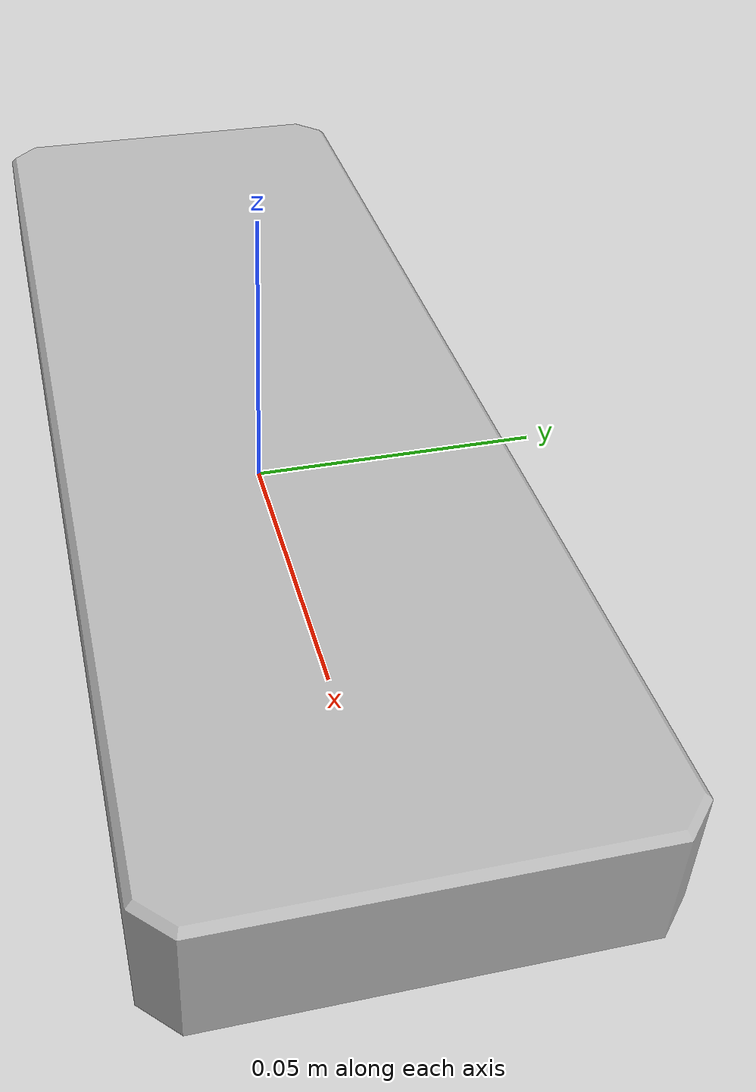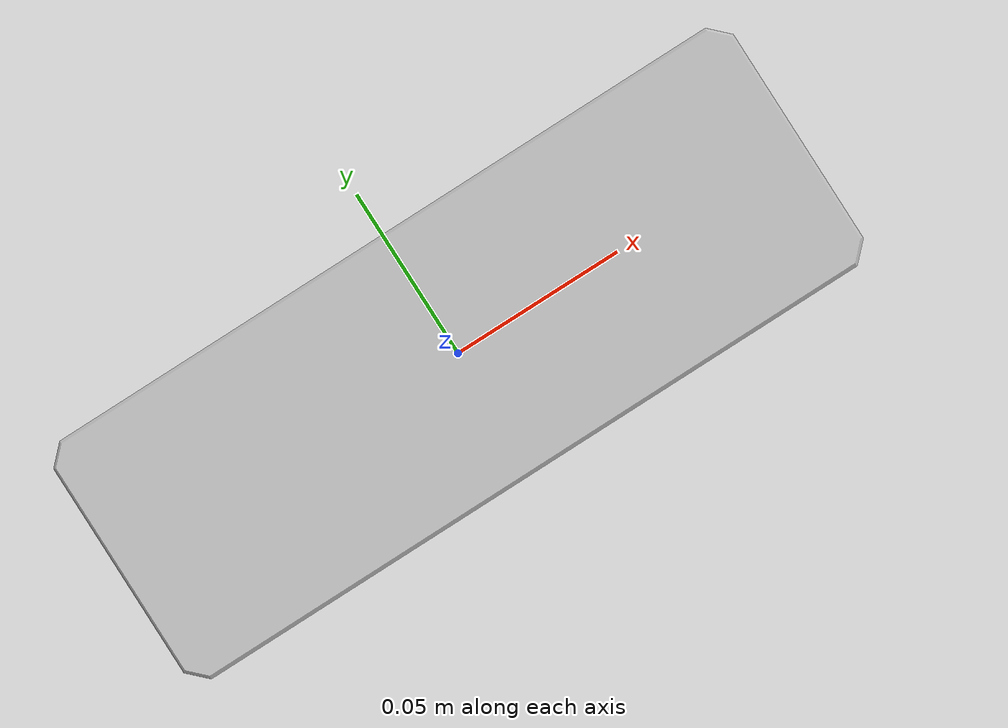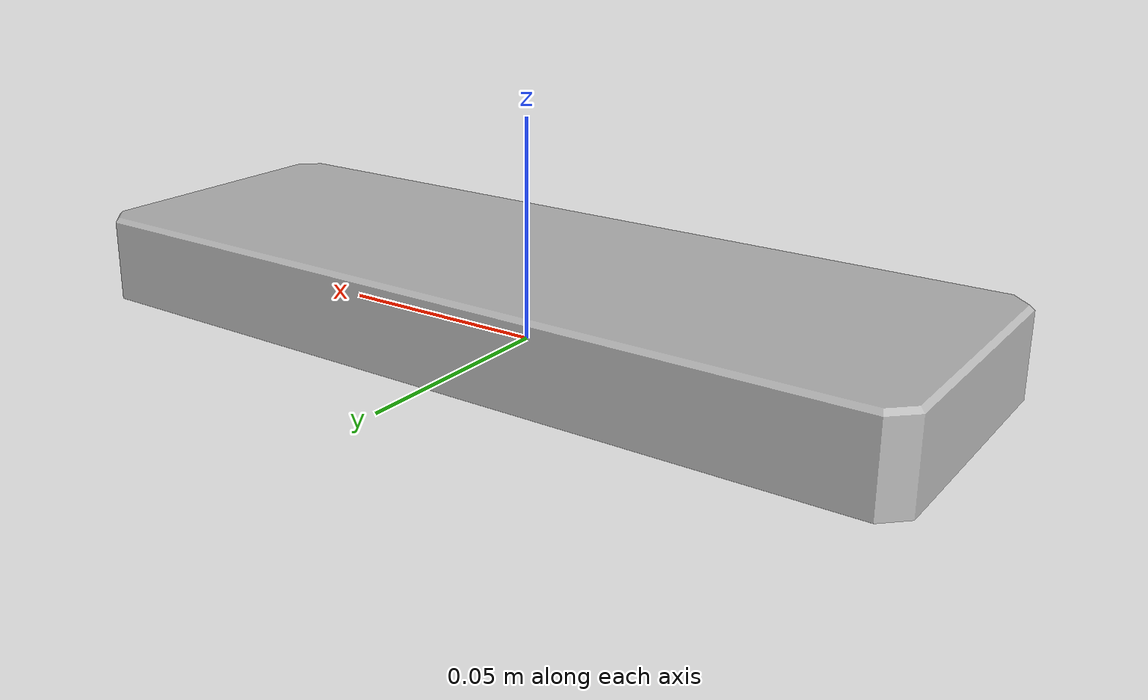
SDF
<?xml version='1.0'?>
<sdf version='1.6'>
  <model name='metal_middlevtwo'>
    <link name='metal_middle_base_link'>
      <pose frame=''>0 0 0 0 -0 0</pose>
      <inertial>
        <pose frame=''>-0.000219 0 0.008155 0 -0 0</pose>
        <mass>0.21078</mass>
        <inertia>
          <ixx>9.8958e-05</ixx>
          <ixy>8.4844e-11</ixy>
          <ixz>4.3189e-07</ixz>
          <iyy>0.00075828</iyy>
          <iyz>-2.9319e-11</iyz>
          <izz>0.00084505</izz>
        </inertia>
      </inertial>
      <self_collide>0</self_collide>
      <enable_wind>0</enable_wind>
      <kinematic>0</kinematic>
      <visual name='metal_middle_base_link_visual'>
        <pose frame=''>0 0 0 0 -0 0</pose>
        <geometry>
          <mesh>
            <scale>1 1 1</scale>
            <uri>model://metal_middlevtwo/meshes/metal_middle_base_link.STL</uri>
          </mesh>
        </geometry>
        <transparency>0</transparency>
        <cast_shadows>1</cast_shadows>
      </visual>
      <collision name='metal_middle_base_link_collision'>
        <laser_retro>0</laser_retro>
        <max_contacts>10</max_contacts>
        <pose frame=''>0 0 0 0 -0 0</pose>
        <geometry>
          <mesh>
            <uri>model://metal_middlevtwo/meshes/metal_middle_base_link.STL</uri>
            <scale>1 1 1</scale>
          </mesh>
        </geometry>
        <surface>
          <friction>
            <ode>
              <mu>1</mu>
              <mu2>1</mu2>
              <fdir1>0 0 0</fdir1>
              <slip1>0</slip1>
              <slip2>0</slip2>
            </ode>
            <torsional>
              <coefficient>1</coefficient>
              <patch_radius>0</patch_radius>
              <surface_radius>0</surface_radius>
              <use_patch_radius>1</use_patch_radius>
              <ode>
                <slip>0</slip>
              </ode>
            </torsional>
          </friction>
          <bounce>
            <restitution_coefficient>0</restitution_coefficient>
            <threshold>1e+06</threshold>
          </bounce>
          <contact>
            <collide_without_contact>0</collide_without_contact>
            <collide_without_contact_bitmask>1</collide_without_contact_bitmask>
            <collide_bitmask>1</collide_bitmask>
            <ode>
              <soft_cfm>0</soft_cfm>
              <soft_erp>0.2</soft_erp>
              <kp>1e+13</kp>
              <kd>1</kd>
              <max_vel>0.01</max_vel>
              <min_depth>0.001</min_depth>
            </ode>
            <bullet>
              <split_impulse>1</split_impulse>
              <split_impulse_penetration_threshold>-0.01</split_impulse_penetration_threshold>
              <soft_cfm>0</soft_cfm>
              <soft_erp>0.2</soft_erp>
              <kp>1e+13</kp>
              <kd>1</kd>
            </bullet>
          </contact>
        </surface>
      </collision>
    </link>
    <static>0</static>
    <allow_auto_disable>1</allow_auto_disable>
  </model>
</sdf>
